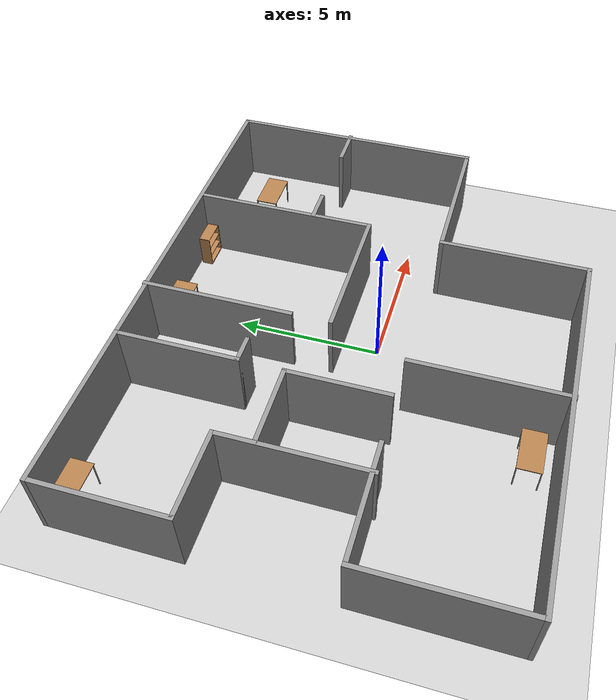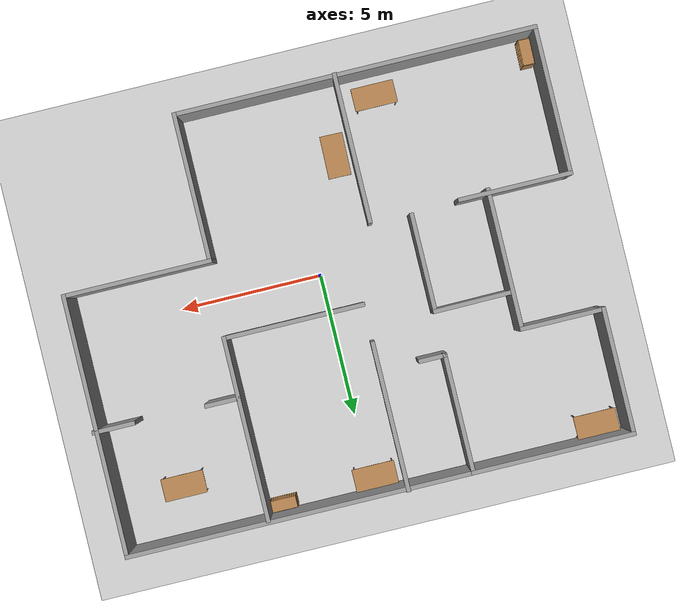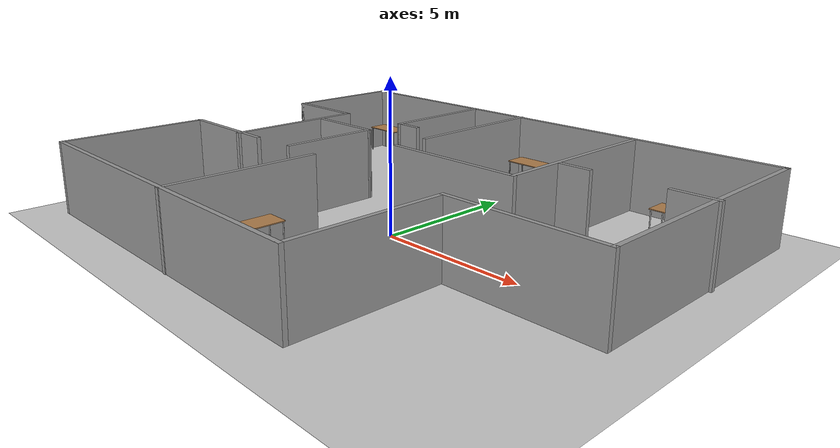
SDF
<sdf version="1.7">
 <world name="default">
  <light name="sun" type="directional">
   <pose>0 0 10 0 -0 0</pose>
   <diffuse>0.8 0.8 0.8 1</diffuse>
   <specular>0.2 0.2 0.2 1</specular>
   <attenuation>
    <range>1000</range>
    <constant>0.9</constant>
    <linear>0.01</linear>
    <quadratic>0.001</quadratic>
   </attenuation>
   <direction>-0.5 0.1 -0.9</direction>
   <spot><inner_angle>0</inner_angle><outer_angle>0</outer_angle><falloff>0</falloff></spot>
  </light>
  <model name="ground_plane">
   <static>1</static>
   <link name="link">
    <collision name="collision">
     <geometry><plane><normal>0 0 1</normal><size>100 100</size></plane></geometry>
     <surface>
      <contact><collide_bitmask>65535</collide_bitmask></contact>
      <friction><ode><mu>100</mu><mu2>50</mu2></ode></friction>
     </surface>
    </collision>
    <visual name="visual">
     <cast_shadows>0</cast_shadows>
     <geometry><plane><normal>0 0 1</normal><size>100 100</size></plane></geometry>
     <material>
      <script><uri>file://media/materials/scripts/gazebo.material</uri><name>Gazebo/Grey</name></script>
     </material>
    </visual>
   </link>
  </model>
  <gravity>0 0 -9.8</gravity>
  <magnetic_field>6e-06 2.3e-05 -4.2e-05</magnetic_field>
  <atmosphere type="adiabatic"/>
  <physics type="ode">
   <max_step_size>0.001</max_step_size>
   <real_time_factor>1</real_time_factor>
   <real_time_update_rate>1000</real_time_update_rate>
  </physics>
  <scene><ambient>0.4 0.4 0.4 1</ambient><background>0.7 0.7 0.7 1</background><shadows>1</shadows></scene>
  <spherical_coordinates>
   <surface_model>EARTH_WGS84</surface_model>
   <latitude_deg>0</latitude_deg>
   <longitude_deg>0</longitude_deg>
   <elevation>0</elevation>
   <heading_deg>0</heading_deg>
  </spherical_coordinates>
  <model name="New_Map.world">
   <pose>-0.198184 0.644438 0 0 -0 0</pose>
   <link name="Wall_0">
    <collision name="Wall_0_Collision">
     <geometry><box><size>5.75 0.15 2.5</size></box></geometry>
     <pose>0 0 1.25 0 -0 0</pose>
    </collision>
    <visual name="Wall_0_Visual">
     <pose>0 0 1.25 0 -0 0</pose>
     <geometry><box><size>5.75 0.15 2.5</size></box></geometry>
     <material>
      <script><uri>file://media/materials/scripts/gazebo.material</uri><name>Gazebo/Grey</name></script>
      <ambient>1 1 1 1</ambient>
     </material>
     <meta><layer>0</layer></meta>
    </visual>
    <pose>-6.09161 7.09093 0 0 -0 0</pose>
   </link>
   <link name="Wall_1">
    <collision name="Wall_1_Collision">
     <geometry><box><size>4.25 0.15 2.5</size></box></geometry>
     <pose>0 0 1.25 0 -0 0</pose>
    </collision>
    <visual name="Wall_1_Visual">
     <pose>0 0 1.25 0 -0 0</pose>
     <geometry><box><size>4.25 0.15 2.5</size></box></geometry>
     <material>
      <script><uri>file://media/materials/scripts/gazebo.material</uri><name>Gazebo/Grey</name></script>
      <ambient>1 1 1 1</ambient>
     </material>
     <meta><layer>0</layer></meta>
    </visual>
    <pose>-3.29161 5.04093 0 0 -0 -1.5708</pose>
   </link>
   <link name="Wall_10">
    <collision name="Wall_10_Collision">
     <geometry><box><size>4 0.15 2.5</size></box></geometry>
     <pose>0 0 1.25 0 -0 0</pose>
    </collision>
    <visual name="Wall_10_Visual">
     <pose>0 0 1.25 0 -0 0</pose>
     <geometry><box><size>4 0.15 2.5</size></box></geometry>
     <material>
      <script><uri>file://media/materials/scripts/gazebo.material</uri><name>Gazebo/Grey</name></script>
      <ambient>1 1 1 1</ambient>
     </material>
     <meta><layer>0</layer></meta>
    </visual>
    <pose>-6.96661 -2.00907 0 0 -0 0</pose>
   </link>
   <link name="Wall_12">
    <collision name="Wall_12_Collision">
     <geometry><box><size>4.5 0.15 2.5</size></box></geometry>
     <pose>0 0 1.25 0 -0 0</pose>
    </collision>
    <visual name="Wall_12_Visual">
     <pose>0 0 1.25 0 -0 0</pose>
     <geometry><box><size>4.5 0.15 2.5</size></box></geometry>
     <material>
      <script><uri>file://media/materials/scripts/gazebo.material</uri><name>Gazebo/Grey</name></script>
      <ambient>1 1 1 1</ambient>
     </material>
     <meta><layer>0</layer></meta>
    </visual>
    <pose>-8.89161 4.91593 0 0 -0 -1.5708</pose>
   </link>
   <link name="Wall_13">
    <collision name="Wall_13_Collision">
     <geometry><box><size>3 0.15 2.5</size></box></geometry>
     <pose>0 0 1.25 0 -0 0</pose>
    </collision>
    <visual name="Wall_13_Visual">
     <pose>0 0 1.25 0 -0 0</pose>
     <geometry><box><size>3 0.15 2.5</size></box></geometry>
     <material>
      <script><uri>file://media/materials/scripts/gazebo.material</uri><name>Gazebo/Grey</name></script>
      <ambient>1 1 1 1</ambient>
     </material>
     <meta><layer>0</layer></meta>
    </visual>
    <pose>-7.46661 2.74093 0 0 -0 0</pose>
   </link>
   <link name="Wall_14">
    <collision name="Wall_14_Collision">
     <geometry><box><size>5 0.15 2.5</size></box></geometry>
     <pose>0 0 1.25 0 -0 0</pose>
    </collision>
    <visual name="Wall_14_Visual">
     <pose>0 0 1.25 0 -0 0</pose>
     <geometry><box><size>5 0.15 2.5</size></box></geometry>
     <material>
      <script><uri>file://media/materials/scripts/gazebo.material</uri><name>Gazebo/Grey</name></script>
      <ambient>1 1 1 1</ambient>
     </material>
     <meta><layer>0</layer></meta>
    </visual>
    <pose>-6.04161 0.31593 0 0 -0 -1.5708</pose>
   </link>
   <link name="Wall_16">
    <collision name="Wall_16_Collision">
     <geometry><box><size>2.82008 0.15 2.5</size></box></geometry>
     <pose>0 0 1.25 0 -0 0</pose>
    </collision>
    <visual name="Wall_16_Visual">
     <pose>0 0 1.25 0 -0 0</pose>
     <geometry><box><size>2.82008 0.15 2.5</size></box></geometry>
     <material>
      <script><uri>file://media/materials/scripts/gazebo.material</uri><name>Gazebo/Grey</name></script>
      <ambient>1 1 1 1</ambient>
     </material>
     <meta><layer>0</layer></meta>
    </visual>
    <pose>-4.65889 1.45498 0 0 -0 0.00749</pose>
   </link>
   <link name="Wall_17">
    <collision name="Wall_17_Collision">
     <geometry><box><size>3.5 0.15 2.5</size></box></geometry>
     <pose>0 0 1.25 0 -0 0</pose>
    </collision>
    <visual name="Wall_17_Visual">
     <pose>0 0 1.25 0 -0 0</pose>
     <geometry><box><size>3.5 0.15 2.5</size></box></geometry>
     <material>
      <script><uri>file://media/materials/scripts/gazebo.material</uri><name>Gazebo/Grey</name></script>
      <ambient>1 1 1 1</ambient>
     </material>
     <meta><layer>0</layer></meta>
    </visual>
    <pose>-3.32389 -0.22002 0 0 -0 -1.5708</pose>
   </link>
   <link name="Wall_19">
    <collision name="Wall_19_Collision">
     <geometry><box><size>5.25 0.15 2.5</size></box></geometry>
     <pose>0 0 1.25 0 -0 0</pose>
    </collision>
    <visual name="Wall_19_Visual">
     <pose>0 0 1.25 0 -0 0</pose>
     <geometry><box><size>5.25 0.15 2.5</size></box></geometry>
     <material>
      <script><uri>file://media/materials/scripts/gazebo.material</uri><name>Gazebo/Grey</name></script>
      <ambient>1 1 1 1</ambient>
     </material>
     <meta><layer>0</layer></meta>
    </visual>
    <pose>-1.89348 -4.5843 0 0 -0 -1.5708</pose>
   </link>
   <link name="Wall_2">
    <collision name="Wall_2_Collision">
     <geometry><box><size>1 0.15 2.5</size></box></geometry>
     <pose>0 0 1.25 0 -0 0</pose>
    </collision>
    <visual name="Wall_2_Visual">
     <pose>0 0 1.25 0 -0 0</pose>
     <geometry><box><size>1 0.15 2.5</size></box></geometry>
     <material>
      <script><uri>file://media/materials/scripts/gazebo.material</uri><name>Gazebo/Grey</name></script>
      <ambient>1 1 1 1</ambient>
     </material>
     <meta><layer>0</layer></meta>
    </visual>
    <pose>-2.86661 2.99093 0 0 -0 0</pose>
   </link>
   <link name="Wall_21">
    <collision name="Wall_21_Collision">
     <geometry><box><size>5.25 0.15 2.5</size></box></geometry>
     <pose>0 0 1.25 0 -0 0</pose>
    </collision>
    <visual name="Wall_21_Visual">
     <pose>0 0 1.25 0 -0 0</pose>
     <geometry><box><size>5.25 0.15 2.5</size></box></geometry>
     <material>
      <script><uri>file://media/materials/scripts/gazebo.material</uri><name>Gazebo/Grey</name></script>
      <ambient>1 1 1 1</ambient>
     </material>
     <meta><layer>0</layer></meta>
    </visual>
    <pose>-1.00666 4.5843 0 0 -0 -1.5708</pose>
   </link>
   <link name="Wall_23">
    <collision name="Wall_23_Collision">
     <geometry><box><size>6.5 0.15 2.5</size></box></geometry>
     <pose>0 0 1.25 0 -0 0</pose>
    </collision>
    <visual name="Wall_23_Visual">
     <pose>0 0 1.25 0 -0 0</pose>
     <geometry><box><size>6.5 0.15 2.5</size></box></geometry>
     <material>
      <script><uri>file://media/materials/scripts/gazebo.material</uri><name>Gazebo/Grey</name></script>
      <ambient>1 1 1 1</ambient>
     </material>
     <meta><layer>0</layer></meta>
    </visual>
    <pose>3.86082 3.83862 0 0 -0 -1.5708</pose>
   </link>
   <link name="Wall_24">
    <collision name="Wall_24_Collision">
     <geometry><box><size>5 0.15 2.5</size></box></geometry>
     <pose>0 0 1.25 0 -0 0</pose>
    </collision>
    <visual name="Wall_24_Visual">
     <pose>0 0 1.25 0 -0 0</pose>
     <geometry><box><size>5 0.15 2.5</size></box></geometry>
     <material>
      <script><uri>file://media/materials/scripts/gazebo.material</uri><name>Gazebo/Grey</name></script>
      <ambient>1 1 1 1</ambient>
     </material>
     <meta><layer>0</layer></meta>
    </visual>
    <pose>1.43582 0.66362 0 0 -0 3.14159</pose>
   </link>
   <link name="Wall_26">
    <collision name="Wall_26_Collision">
     <geometry><box><size>1.25 0.15 2.5</size></box></geometry>
     <pose>0 0 1.25 0 -0 0</pose>
    </collision>
    <visual name="Wall_26_Visual">
     <pose>0 0 1.25 0 -0 0</pose>
     <geometry><box><size>1.25 0.15 2.5</size></box></geometry>
     <material>
      <script><uri>file://media/materials/scripts/gazebo.material</uri><name>Gazebo/Grey</name></script>
      <ambient>1 1 1 1</ambient>
     </material>
     <meta><layer>0</layer></meta>
    </visual>
    <pose>4.41707 2.74954 0 0 -0 3.14159</pose>
   </link>
   <link name="Wall_28">
    <collision name="Wall_28_Collision">
     <geometry><box><size>1.5 0.15 2.5</size></box></geometry>
     <pose>0 0 1.25 0 -0 0</pose>
    </collision>
    <visual name="Wall_28_Visual">
     <pose>0 0 1.25 0 -0 0</pose>
     <geometry><box><size>1.5 0.15 2.5</size></box></geometry>
     <material>
      <script><uri>file://media/materials/scripts/gazebo.material</uri><name>Gazebo/Grey</name></script>
      <ambient>1 1 1 1</ambient>
     </material>
     <meta><layer>0</layer></meta>
    </visual>
    <pose>8.21661 2.72943 0 0 -0 0</pose>
   </link>
   <link name="Wall_4">
    <collision name="Wall_4_Collision">
     <geometry><box><size>12.25 0.15 2.5</size></box></geometry>
     <pose>0 0 1.25 0 -0 0</pose>
    </collision>
    <visual name="Wall_4_Visual">
     <pose>0 0 1.25 0 -0 0</pose>
     <geometry><box><size>12.25 0.15 2.5</size></box></geometry>
     <material>
      <script><uri>file://media/materials/scripts/gazebo.material</uri><name>Gazebo/Grey</name></script>
      <ambient>1 1 1 1</ambient>
     </material>
     <meta><layer>0</layer></meta>
    </visual>
    <pose>2.75839 7.09093 0 0 -0 0</pose>
   </link>
   <link name="Wall_5">
    <collision name="Wall_5_Collision">
     <geometry><box><size>9.25 0.15 2.5</size></box></geometry>
     <pose>0 0 1.25 0 -0 0</pose>
    </collision>
    <visual name="Wall_5_Visual">
     <pose>0 0 1.25 0 -0 0</pose>
     <geometry><box><size>9.25 0.15 2.5</size></box></geometry>
     <material>
      <script><uri>file://media/materials/scripts/gazebo.material</uri><name>Gazebo/Grey</name></script>
      <ambient>1 1 1 1</ambient>
     </material>
     <meta><layer>0</layer></meta>
    </visual>
    <pose>8.80839 2.54093 0 0 -0 -1.5708</pose>
   </link>
   <link name="Wall_6">
    <collision name="Wall_6_Collision">
     <geometry><box><size>5.25 0.15 2.5</size></box></geometry>
     <pose>0 0 1.25 0 -0 0</pose>
    </collision>
    <visual name="Wall_6_Visual">
     <pose>0 0 1.25 0 -0 0</pose>
     <geometry><box><size>5.25 0.15 2.5</size></box></geometry>
     <material>
      <script><uri>file://media/materials/scripts/gazebo.material</uri><name>Gazebo/Grey</name></script>
      <ambient>1 1 1 1</ambient>
     </material>
     <meta><layer>0</layer></meta>
    </visual>
    <pose>6.25839 -2.00907 0 0 -0 3.14159</pose>
   </link>
   <link name="Wall_7">
    <collision name="Wall_7_Collision">
     <geometry><box><size>5.25 0.15 2.5</size></box></geometry>
     <pose>0 0 1.25 0 -0 0</pose>
    </collision>
    <visual name="Wall_7_Visual">
     <pose>0 0 1.25 0 -0 0</pose>
     <geometry><box><size>5.25 0.15 2.5</size></box></geometry>
     <material>
      <script><uri>file://media/materials/scripts/gazebo.material</uri><name>Gazebo/Grey</name></script>
      <ambient>1 1 1 1</ambient>
     </material>
     <meta><layer>0</layer></meta>
    </visual>
    <pose>3.70839 -4.55907 0 0 -0 -1.5708</pose>
   </link>
   <link name="Wall_8">
    <collision name="Wall_8_Collision">
     <geometry><box><size>12.75 0.15 2.5</size></box></geometry>
     <pose>0 0 1.25 0 -0 0</pose>
    </collision>
    <visual name="Wall_8_Visual">
     <pose>0 0 1.25 0 -0 0</pose>
     <geometry><box><size>12.75 0.15 2.5</size></box></geometry>
     <material>
      <script><uri>file://media/materials/scripts/gazebo.material</uri><name>Gazebo/Grey</name></script>
      <ambient>1 1 1 1</ambient>
     </material>
     <meta><layer>0</layer></meta>
    </visual>
    <pose>-2.59161 -7.10907 0 0 -0 3.14159</pose>
   </link>
   <link name="Wall_9">
    <collision name="Wall_9_Collision">
     <geometry><box><size>5.25 0.15 2.5</size></box></geometry>
     <pose>0 0 1.25 0 -0 0</pose>
    </collision>
    <visual name="Wall_9_Visual">
     <pose>0 0 1.25 0 -0 0</pose>
     <geometry><box><size>5.25 0.15 2.5</size></box></geometry>
     <material>
      <script><uri>file://media/materials/scripts/gazebo.material</uri><name>Gazebo/Grey</name></script>
      <ambient>1 1 1 1</ambient>
     </material>
     <meta><layer>0</layer></meta>
    </visual>
    <pose>-8.89161 -4.55907 0 0 -0 1.5708</pose>
   </link>
   <static>1</static>
  </model>
  <model name="table">
   <static>1</static>
   <link name="link">
    <collision name="surface">
     <pose>0 0 1 0 -0 0</pose>
     <geometry><box><size>1.5 0.8 0.03</size></box></geometry>
     <surface><friction><ode><mu>0.6</mu><mu2>0.6</mu2></ode></friction></surface>
    </collision>
    <visual name="visual1">
     <pose>0 0 1 0 -0 0</pose>
     <geometry><box><size>1.5 0.8 0.03</size></box></geometry>
     <material>
      <script><uri>file://media/materials/scripts/gazebo.material</uri><name>Gazebo/Wood</name></script>
     </material>
    </visual>
    <collision name="front_left_leg">
     <pose>0.68 0.38 0.5 0 -0 0</pose>
     <geometry><cylinder><radius>0.02</radius><length>1</length></cylinder></geometry>
    </collision>
    <visual name="front_left_leg">
     <pose>0.68 0.38 0.5 0 -0 0</pose>
     <geometry><cylinder><radius>0.02</radius><length>1</length></cylinder></geometry>
     <material>
      <script><uri>file://media/materials/scripts/gazebo.material</uri><name>Gazebo/Grey</name></script>
     </material>
    </visual>
    <collision name="front_right_leg">
     <pose>0.68 -0.38 0.5 0 -0 0</pose>
     <geometry><cylinder><radius>0.02</radius><length>1</length></cylinder></geometry>
    </collision>
    <visual name="front_right_leg">
     <pose>0.68 -0.38 0.5 0 -0 0</pose>
     <geometry><cylinder><radius>0.02</radius><length>1</length></cylinder></geometry>
     <material>
      <script><uri>file://media/materials/scripts/gazebo.material</uri><name>Gazebo/Grey</name></script>
     </material>
    </visual>
    <collision name="back_right_leg">
     <pose>-0.68 -0.38 0.5 0 -0 0</pose>
     <geometry><cylinder><radius>0.02</radius><length>1</length></cylinder></geometry>
    </collision>
    <visual name="back_right_leg">
     <pose>-0.68 -0.38 0.5 0 -0 0</pose>
     <geometry><cylinder><radius>0.02</radius><length>1</length></cylinder></geometry>
     <material>
      <script><uri>file://media/materials/scripts/gazebo.material</uri><name>Gazebo/Grey</name></script>
     </material>
    </visual>
    <collision name="back_left_leg">
     <pose>-0.68 0.38 0.5 0 -0 0</pose>
     <geometry><cylinder><radius>0.02</radius><length>1</length></cylinder></geometry>
    </collision>
    <visual name="back_left_leg">
     <pose>-0.68 0.38 0.5 0 -0 0</pose>
     <geometry><cylinder><radius>0.02</radius><length>1</length></cylinder></geometry>
     <material>
      <script><uri>file://media/materials/scripts/gazebo.material</uri><name>Gazebo/Grey</name></script>
     </material>
    </visual>
   </link>
   <pose>6.3153 5.96108 0 0 -0 0</pose>
  </model>
  <model name="table_0">
   <static>1</static>
   <link name="link">
    <collision name="surface">
     <pose>0 0 1 0 -0 0</pose>
     <geometry><box><size>1.5 0.8 0.03</size></box></geometry>
     <surface><friction><ode><mu>0.6</mu><mu2>0.6</mu2></ode></friction></surface>
    </collision>
    <visual name="visual1">
     <pose>0 0 1 0 -0 0</pose>
     <geometry><box><size>1.5 0.8 0.03</size></box></geometry>
     <material>
      <script><uri>file://media/materials/scripts/gazebo.material</uri><name>Gazebo/Wood</name></script>
     </material>
    </visual>
    <collision name="front_left_leg">
     <pose>0.68 0.38 0.5 0 -0 0</pose>
     <geometry><cylinder><radius>0.02</radius><length>1</length></cylinder></geometry>
    </collision>
    <visual name="front_left_leg">
     <pose>0.68 0.38 0.5 0 -0 0</pose>
     <geometry><cylinder><radius>0.02</radius><length>1</length></cylinder></geometry>
     <material>
      <script><uri>file://media/materials/scripts/gazebo.material</uri><name>Gazebo/Grey</name></script>
     </material>
    </visual>
    <collision name="front_right_leg">
     <pose>0.68 -0.38 0.5 0 -0 0</pose>
     <geometry><cylinder><radius>0.02</radius><length>1</length></cylinder></geometry>
    </collision>
    <visual name="front_right_leg">
     <pose>0.68 -0.38 0.5 0 -0 0</pose>
     <geometry><cylinder><radius>0.02</radius><length>1</length></cylinder></geometry>
     <material>
      <script><uri>file://media/materials/scripts/gazebo.material</uri><name>Gazebo/Grey</name></script>
     </material>
    </visual>
    <collision name="back_right_leg">
     <pose>-0.68 -0.38 0.5 0 -0 0</pose>
     <geometry><cylinder><radius>0.02</radius><length>1</length></cylinder></geometry>
    </collision>
    <visual name="back_right_leg">
     <pose>-0.68 -0.38 0.5 0 -0 0</pose>
     <geometry><cylinder><radius>0.02</radius><length>1</length></cylinder></geometry>
     <material>
      <script><uri>file://media/materials/scripts/gazebo.material</uri><name>Gazebo/Grey</name></script>
     </material>
    </visual>
    <collision name="back_left_leg">
     <pose>-0.68 0.38 0.5 0 -0 0</pose>
     <geometry><cylinder><radius>0.02</radius><length>1</length></cylinder></geometry>
    </collision>
    <visual name="back_left_leg">
     <pose>-0.68 0.38 0.5 0 -0 0</pose>
     <geometry><cylinder><radius>0.02</radius><length>1</length></cylinder></geometry>
     <material>
      <script><uri>file://media/materials/scripts/gazebo.material</uri><name>Gazebo/Grey</name></script>
     </material>
    </visual>
   </link>
   <pose>-0.206832 7.20557 0 0 -0 0</pose>
  </model>
  <model name="table_1">
   <static>1</static>
   <link name="link">
    <collision name="surface">
     <pose>0 0 1 0 -0 0</pose>
     <geometry><box><size>1.5 0.8 0.03</size></box></geometry>
     <surface><friction><ode><mu>0.6</mu><mu2>0.6</mu2></ode></friction></surface>
    </collision>
    <visual name="visual1">
     <pose>0 0 1 0 -0 0</pose>
     <geometry><box><size>1.5 0.8 0.03</size></box></geometry>
     <material>
      <script><uri>file://media/materials/scripts/gazebo.material</uri><name>Gazebo/Wood</name></script>
     </material>
    </visual>
    <collision name="front_left_leg">
     <pose>0.68 0.38 0.5 0 -0 0</pose>
     <geometry><cylinder><radius>0.02</radius><length>1</length></cylinder></geometry>
    </collision>
    <visual name="front_left_leg">
     <pose>0.68 0.38 0.5 0 -0 0</pose>
     <geometry><cylinder><radius>0.02</radius><length>1</length></cylinder></geometry>
     <material>
      <script><uri>file://media/materials/scripts/gazebo.material</uri><name>Gazebo/Grey</name></script>
     </material>
    </visual>
    <collision name="front_right_leg">
     <pose>0.68 -0.38 0.5 0 -0 0</pose>
     <geometry><cylinder><radius>0.02</radius><length>1</length></cylinder></geometry>
    </collision>
    <visual name="front_right_leg">
     <pose>0.68 -0.38 0.5 0 -0 0</pose>
     <geometry><cylinder><radius>0.02</radius><length>1</length></cylinder></geometry>
     <material>
      <script><uri>file://media/materials/scripts/gazebo.material</uri><name>Gazebo/Grey</name></script>
     </material>
    </visual>
    <collision name="back_right_leg">
     <pose>-0.68 -0.38 0.5 0 -0 0</pose>
     <geometry><cylinder><radius>0.02</radius><length>1</length></cylinder></geometry>
    </collision>
    <visual name="back_right_leg">
     <pose>-0.68 -0.38 0.5 0 -0 0</pose>
     <geometry><cylinder><radius>0.02</radius><length>1</length></cylinder></geometry>
     <material>
      <script><uri>file://media/materials/scripts/gazebo.material</uri><name>Gazebo/Grey</name></script>
     </material>
    </visual>
    <collision name="back_left_leg">
     <pose>-0.68 0.38 0.5 0 -0 0</pose>
     <geometry><cylinder><radius>0.02</radius><length>1</length></cylinder></geometry>
    </collision>
    <visual name="back_left_leg">
     <pose>-0.68 0.38 0.5 0 -0 0</pose>
     <geometry><cylinder><radius>0.02</radius><length>1</length></cylinder></geometry>
     <material>
      <script><uri>file://media/materials/scripts/gazebo.material</uri><name>Gazebo/Grey</name></script>
     </material>
    </visual>
   </link>
   <pose>-8.10221 7.2455 0 0 -0 0</pose>
  </model>
  <model name="table_2">
   <static>1</static>
   <link name="link">
    <collision name="surface">
     <pose>0 0 1 0 -0 0</pose>
     <geometry><box><size>1.5 0.8 0.03</size></box></geometry>
     <surface><friction><ode><mu>0.6</mu><mu2>0.6</mu2></ode></friction></surface>
    </collision>
    <visual name="visual1">
     <pose>0 0 1 0 -0 0</pose>
     <geometry><box><size>1.5 0.8 0.03</size></box></geometry>
     <material>
      <script><uri>file://media/materials/scripts/gazebo.material</uri><name>Gazebo/Wood</name></script>
     </material>
    </visual>
    <collision name="front_left_leg">
     <pose>0.68 0.38 0.5 0 -0 0</pose>
     <geometry><cylinder><radius>0.02</radius><length>1</length></cylinder></geometry>
    </collision>
    <visual name="front_left_leg">
     <pose>0.68 0.38 0.5 0 -0 0</pose>
     <geometry><cylinder><radius>0.02</radius><length>1</length></cylinder></geometry>
     <material>
      <script><uri>file://media/materials/scripts/gazebo.material</uri><name>Gazebo/Grey</name></script>
     </material>
    </visual>
    <collision name="front_right_leg">
     <pose>0.68 -0.38 0.5 0 -0 0</pose>
     <geometry><cylinder><radius>0.02</radius><length>1</length></cylinder></geometry>
    </collision>
    <visual name="front_right_leg">
     <pose>0.68 -0.38 0.5 0 -0 0</pose>
     <geometry><cylinder><radius>0.02</radius><length>1</length></cylinder></geometry>
     <material>
      <script><uri>file://media/materials/scripts/gazebo.material</uri><name>Gazebo/Grey</name></script>
     </material>
    </visual>
    <collision name="back_right_leg">
     <pose>-0.68 -0.38 0.5 0 -0 0</pose>
     <geometry><cylinder><radius>0.02</radius><length>1</length></cylinder></geometry>
    </collision>
    <visual name="back_right_leg">
     <pose>-0.68 -0.38 0.5 0 -0 0</pose>
     <geometry><cylinder><radius>0.02</radius><length>1</length></cylinder></geometry>
     <material>
      <script><uri>file://media/materials/scripts/gazebo.material</uri><name>Gazebo/Grey</name></script>
     </material>
    </visual>
    <collision name="back_left_leg">
     <pose>-0.68 0.38 0.5 0 -0 0</pose>
     <geometry><cylinder><radius>0.02</radius><length>1</length></cylinder></geometry>
    </collision>
    <visual name="back_left_leg">
     <pose>-0.68 0.38 0.5 0 -0 0</pose>
     <geometry><cylinder><radius>0.02</radius><length>1</length></cylinder></geometry>
     <material>
      <script><uri>file://media/materials/scripts/gazebo.material</uri><name>Gazebo/Grey</name></script>
     </material>
    </visual>
   </link>
   <pose>-3.28692 -5.63095 0 0 -0 0</pose>
  </model>
  <model name="bookshelf">
   <static>1</static>
   <link name="link">
    <inertial><mass>1</mass></inertial>
    <collision name="back">
     <pose>0 0.005 0.6 0 -0 0</pose>
     <geometry><box><size>0.9 0.01 1.2</size></box></geometry>
    </collision>
    <visual name="visual1">
     <pose>0 0.005 0.6 0 -0 0</pose>
     <geometry><box><size>0.9 0.01 1.2</size></box></geometry>
     <material>
      <script><uri>file://media/materials/scripts/gazebo.material</uri><name>Gazebo/Wood</name></script>
     </material>
    </visual>
    <collision name="left_side">
     <pose>0.45 -0.195 0.6 0 -0 0</pose>
     <geometry><box><size>0.02 0.4 1.2</size></box></geometry>
    </collision>
    <visual name="visual2">
     <pose>0.45 -0.195 0.6 0 -0 0</pose>
     <geometry><box><size>0.02 0.4 1.2</size></box></geometry>
     <material>
      <script><uri>file://media/materials/scripts/gazebo.material</uri><name>Gazebo/Wood</name></script>
     </material>
    </visual>
    <collision name="right_side">
     <pose>-0.45 -0.195 0.6 0 -0 0</pose>
     <geometry><box><size>0.02 0.4 1.2</size></box></geometry>
    </collision>
    <visual name="visual3">
     <pose>-0.45 -0.195 0.6 0 -0 0</pose>
     <geometry><box><size>0.02 0.4 1.2</size></box></geometry>
     <material>
      <script><uri>file://media/materials/scripts/gazebo.material</uri><name>Gazebo/Wood</name></script>
     </material>
    </visual>
    <collision name="bottom">
     <pose>0 -0.195 0.03 0 -0 0</pose>
     <geometry><box><size>0.88 0.4 0.06</size></box></geometry>
    </collision>
    <visual name="visual4">
     <pose>0 -0.195 0.03 0 -0 0</pose>
     <geometry><box><size>0.88 0.4 0.06</size></box></geometry>
     <material>
      <script><uri>file://media/materials/scripts/gazebo.material</uri><name>Gazebo/Wood</name></script>
     </material>
    </visual>
    <collision name="top">
     <pose>0 -0.195 1.19 0 -0 0</pose>
     <geometry><box><size>0.88 0.4 0.02</size></box></geometry>
    </collision>
    <visual name="visual5">
     <pose>0 -0.195 1.19 0 -0 0</pose>
     <geometry><box><size>0.88 0.4 0.02</size></box></geometry>
     <material>
      <script><uri>file://media/materials/scripts/gazebo.material</uri><name>Gazebo/Wood</name></script>
     </material>
    </visual>
    <collision name="low_shelf">
     <pose>0 -0.195 0.43 0 -0 0</pose>
     <geometry><box><size>0.88 0.4 0.02</size></box></geometry>
    </collision>
    <visual name="visual6">
     <pose>0 -0.195 0.43 0 -0 0</pose>
     <geometry><box><size>0.88 0.4 0.02</size></box></geometry>
     <material>
      <script><uri>file://media/materials/scripts/gazebo.material</uri><name>Gazebo/Wood</name></script>
     </material>
    </visual>
    <collision name="high_shelf">
     <pose>0 -0.195 0.8 0 -0 0</pose>
     <geometry><box><size>0.88 0.4 0.02</size></box></geometry>
    </collision>
    <visual name="visual7">
     <pose>0 -0.195 0.8 0 -0 0</pose>
     <geometry><box><size>0.88 0.4 0.02</size></box></geometry>
     <material>
      <script><uri>file://media/materials/scripts/gazebo.material</uri><name>Gazebo/Wood</name></script>
     </material>
    </visual>
   </link>
   <pose>3.08459 7.5785 0 0 -0 0</pose>
  </model>
  <model name="table_3">
   <static>1</static>
   <link name="link">
    <collision name="surface">
     <pose>0 0 1 0 -0 0</pose>
     <geometry><box><size>1.5 0.8 0.03</size></box></geometry>
     <surface><friction><ode><mu>0.6</mu><mu2>0.6</mu2></ode></friction></surface>
    </collision>
    <visual name="visual1">
     <pose>0 0 1 0 -0 0</pose>
     <geometry><box><size>1.5 0.8 0.03</size></box></geometry>
     <material>
      <script><uri>file://media/materials/scripts/gazebo.material</uri><name>Gazebo/Wood</name></script>
     </material>
    </visual>
    <collision name="front_left_leg">
     <pose>0.68 0.38 0.5 0 -0 0</pose>
     <geometry><cylinder><radius>0.02</radius><length>1</length></cylinder></geometry>
    </collision>
    <visual name="front_left_leg">
     <pose>0.68 0.38 0.5 0 -0 0</pose>
     <geometry><cylinder><radius>0.02</radius><length>1</length></cylinder></geometry>
     <material>
      <script><uri>file://media/materials/scripts/gazebo.material</uri><name>Gazebo/Grey</name></script>
     </material>
    </visual>
    <collision name="front_right_leg">
     <pose>0.68 -0.38 0.5 0 -0 0</pose>
     <geometry><cylinder><radius>0.02</radius><length>1</length></cylinder></geometry>
    </collision>
    <visual name="front_right_leg">
     <pose>0.68 -0.38 0.5 0 -0 0</pose>
     <geometry><cylinder><radius>0.02</radius><length>1</length></cylinder></geometry>
     <material>
      <script><uri>file://media/materials/scripts/gazebo.material</uri><name>Gazebo/Grey</name></script>
     </material>
    </visual>
    <collision name="back_right_leg">
     <pose>-0.68 -0.38 0.5 0 -0 0</pose>
     <geometry><cylinder><radius>0.02</radius><length>1</length></cylinder></geometry>
    </collision>
    <visual name="back_right_leg">
     <pose>-0.68 -0.38 0.5 0 -0 0</pose>
     <geometry><cylinder><radius>0.02</radius><length>1</length></cylinder></geometry>
     <material>
      <script><uri>file://media/materials/scripts/gazebo.material</uri><name>Gazebo/Grey</name></script>
     </material>
    </visual>
    <collision name="back_left_leg">
     <pose>-0.68 0.38 0.5 0 -0 0</pose>
     <geometry><cylinder><radius>0.02</radius><length>1</length></cylinder></geometry>
    </collision>
    <visual name="back_left_leg">
     <pose>-0.68 0.38 0.5 0 -0 0</pose>
     <geometry><cylinder><radius>0.02</radius><length>1</length></cylinder></geometry>
     <material>
      <script><uri>file://media/materials/scripts/gazebo.material</uri><name>Gazebo/Grey</name></script>
     </material>
    </visual>
   </link>
   <pose>-1.49101 -3.92084 0 0 -0 1.55303</pose>
  </model>
  <model name="bookshelf_0">
   <static>1</static>
   <link name="link">
    <inertial><mass>1</mass></inertial>
    <collision name="back">
     <pose>0 0.005 0.6 0 -0 0</pose>
     <geometry><box><size>0.9 0.01 1.2</size></box></geometry>
    </collision>
    <visual name="visual1">
     <pose>0 0.005 0.6 0 -0 0</pose>
     <geometry><box><size>0.9 0.01 1.2</size></box></geometry>
     <material>
      <script><uri>file://media/materials/scripts/gazebo.material</uri><name>Gazebo/Wood</name></script>
     </material>
    </visual>
    <collision name="left_side">
     <pose>0.45 -0.195 0.6 0 -0 0</pose>
     <geometry><box><size>0.02 0.4 1.2</size></box></geometry>
    </collision>
    <visual name="visual2">
     <pose>0.45 -0.195 0.6 0 -0 0</pose>
     <geometry><box><size>0.02 0.4 1.2</size></box></geometry>
     <material>
      <script><uri>file://media/materials/scripts/gazebo.material</uri><name>Gazebo/Wood</name></script>
     </material>
    </visual>
    <collision name="right_side">
     <pose>-0.45 -0.195 0.6 0 -0 0</pose>
     <geometry><box><size>0.02 0.4 1.2</size></box></geometry>
    </collision>
    <visual name="visual3">
     <pose>-0.45 -0.195 0.6 0 -0 0</pose>
     <geometry><box><size>0.02 0.4 1.2</size></box></geometry>
     <material>
      <script><uri>file://media/materials/scripts/gazebo.material</uri><name>Gazebo/Wood</name></script>
     </material>
    </visual>
    <collision name="bottom">
     <pose>0 -0.195 0.03 0 -0 0</pose>
     <geometry><box><size>0.88 0.4 0.06</size></box></geometry>
    </collision>
    <visual name="visual4">
     <pose>0 -0.195 0.03 0 -0 0</pose>
     <geometry><box><size>0.88 0.4 0.06</size></box></geometry>
     <material>
      <script><uri>file://media/materials/scripts/gazebo.material</uri><name>Gazebo/Wood</name></script>
     </material>
    </visual>
    <collision name="top">
     <pose>0 -0.195 1.19 0 -0 0</pose>
     <geometry><box><size>0.88 0.4 0.02</size></box></geometry>
    </collision>
    <visual name="visual5">
     <pose>0 -0.195 1.19 0 -0 0</pose>
     <geometry><box><size>0.88 0.4 0.02</size></box></geometry>
     <material>
      <script><uri>file://media/materials/scripts/gazebo.material</uri><name>Gazebo/Wood</name></script>
     </material>
    </visual>
    <collision name="low_shelf">
     <pose>0 -0.195 0.43 0 -0 0</pose>
     <geometry><box><size>0.88 0.4 0.02</size></box></geometry>
    </collision>
    <visual name="visual6">
     <pose>0 -0.195 0.43 0 -0 0</pose>
     <geometry><box><size>0.88 0.4 0.02</size></box></geometry>
     <material>
      <script><uri>file://media/materials/scripts/gazebo.material</uri><name>Gazebo/Wood</name></script>
     </material>
    </visual>
    <collision name="high_shelf">
     <pose>0 -0.195 0.8 0 -0 0</pose>
     <geometry><box><size>0.88 0.4 0.02</size></box></geometry>
    </collision>
    <visual name="visual7">
     <pose>0 -0.195 0.8 0 -0 0</pose>
     <geometry><box><size>0.88 0.4 0.02</size></box></geometry>
     <material>
      <script><uri>file://media/materials/scripts/gazebo.material</uri><name>Gazebo/Wood</name></script>
     </material>
    </visual>
   </link>
   <pose>-8.9491 -5.82913 0 0 -0 1.55384</pose>
  </model>
 </world>
</sdf>
